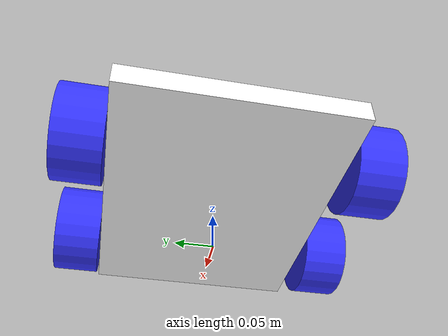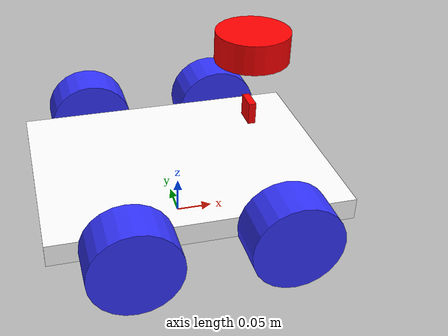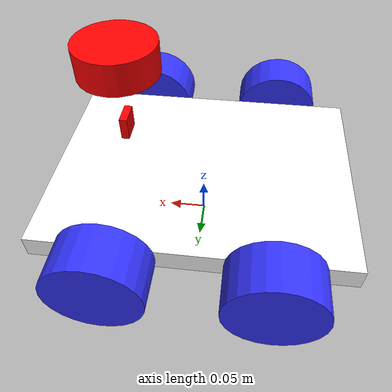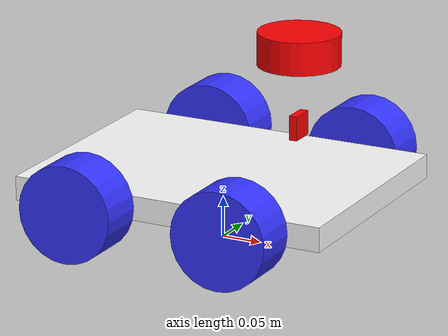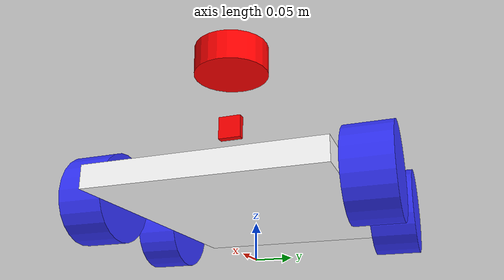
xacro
<?xml version="1.0"?>
<robot xmlns:xacro="http://www.ros.org/wiki/xacro" name="tracker_master_bot">

  <!-- Include the parameter file -->
  <xacro:include filename="$(find track_master)/urdf/robot_parameters.xacro" />

  <!-- Include the chassis -->
  <xacro:include filename="$(find track_master)/urdf/chassis.xacro" />

  <!-- Include the GNSS sensor -->
  <xacro:include filename="$(find track_master)/urdf/gnss_sensor.xacro" />

  <!-- Include the IMU sensor -->
  <xacro:include filename="$(find track_master)/urdf/imu_sensor.xacro" />

 <xacro:include filename="$(find track_master)/urdf/lidar.xacro" />

  <xacro:include filename="$(find track_master)/urdf/camera.xacro" />

  <xacro:include filename="$(find track_master)/urdf/ros2_control.xacro" />

</robot>

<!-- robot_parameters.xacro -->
<robot xmlns:xacro="http://www.ros.org/wiki/xacro">

  <!-- Parameters for the robot dimensions -->
  <xacro:property name="chassis_length" value="0.4"/>
  <xacro:property name="chassis_width" value="0.3"/>
  <xacro:property name="chassis_height" value="0.03"/>

  <!-- Parameters for rear wheel positions -->
  <xacro:property name="rear_wheel_radius" value="0.06"/>
  <xacro:property name="rear_wheel_length" value="0.06"/>
  <xacro:property name="rear_left_wheel_pos_x" value="-0.10"/>
  <xacro:property name="rear_right_wheel_pos_x" value="-0.10"/>
  <xacro:property name="rear_left_wheel_pos_y" value="0.18"/>
  <xacro:property name="rear_right_wheel_pos_y" value="-0.18"/>

  <!-- Parameters for front wheel positions -->
  <xacro:property name="front_wheel_radius" value="0.06"/>
  <xacro:property name="front_wheel_length" value="0.06"/>
  <xacro:property name="front_left_wheel_pos_x" value="0.10"/>
  <xacro:property name="front_right_wheel_pos_x" value="0.10"/>
  <xacro:property name="front_left_wheel_pos_y" value="0.18"/>
  <xacro:property name="front_right_wheel_pos_y" value="-0.18"/>

  <!-- Parameters for sensor positions -->
  <xacro:property name="gps_pos_x" value="0.05"/>
  <xacro:property name="gps_pos_y" value="0.0"/>
  <xacro:property name="gps_pos_z" value="0.0"/>

  <xacro:property name="imu_pos_x" value="0.0"/>
  <xacro:property name="imu_pos_y" value="0.0"/>
  <xacro:property name="imu_pos_z" value="0.0"/>

</robot>

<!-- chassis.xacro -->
<robot xmlns:xacro="http://www.ros.org/wiki/xacro" name="four_wheel_drive_robot">

  <!-- Include the parameters file -->
  <xacro:include filename="$(find track_master)/urdf/robot_parameters.xacro" />
  <xacro:include filename="$(find track_master)/urdf/inertial_macros.xacro"/>

  <!-- Couleurs -->
  <material name="white">
    <color rgba="1.0 1.0 1.0 1.0"/>
  </material>

  <material name="blue">
    <color rgba="0.2 0.2 1.0 1.0"/>
  </material>

  <!-- Root link (world or environment) -->
  <link name="base_footprint"/>

  <!-- Robot chassis -->
  <link name="base_link">
    <visual>
      <geometry>
        <box size="${chassis_length} ${chassis_width} ${chassis_height}"/>
      </geometry>
      <material name="white"/>
    </visual>
    <collision>
      <geometry>
        <box size="${chassis_length} ${chassis_width} ${chassis_height}"/>
      </geometry>
    </collision>
    <xacro:inertial_box mass="0.5" x="${chassis_length}" y="${chassis_width}" z="${chassis_height}">
            <origin xyz="${chassis_length/2} 0 ${chassis_height/2}" rpy="0 0 0"/>
    </xacro:inertial_box>
  </link>

  <!-- Gazebo plugin for base link -->
  <gazebo reference="base_link">
    <material>Gazebo/White</material>
  </gazebo>

  <!-- Joint to connect base_link to world_link (fixed joint) -->
  <joint name="base_joint" type="fixed">
    <parent link="base_footprint"/>
    <child link="base_link"/>
    <origin xyz="0 0 0.075" rpy="0 0 0"/>
  </joint>

  <!-- Rear left wheel -->
  <link name="rear_left_wheel">
    <visual>
      <geometry>
        <cylinder radius="${rear_wheel_radius}" length="${rear_wheel_length}"/>
      </geometry>
      <material name="blue"/>
    </visual>
    <collision>
      <geometry>
        <cylinder radius="${rear_wheel_radius}" length="${rear_wheel_length}"/>
      </geometry>
    </collision>
    <xacro:inertial_cylinder mass="0.3" length="${rear_wheel_length}" radius="${rear_wheel_radius}">
            <origin xyz="0 0 0" rpy="0 0 0"/>
    </xacro:inertial_cylinder>
  </link>

  <gazebo reference="rear_left_wheel">
    <material>Gazebo/Blue</material>
    <mu1>0.9</mu1>
    <mu2>0.9</mu2>
    <kp>1000000.0</kp>
    <kd>1.0</kd>
  </gazebo>

  <!-- Rear right wheel -->
  <link name="rear_right_wheel">
    <visual>
      <geometry>
        <cylinder radius="${rear_wheel_radius}" length="${rear_wheel_length}"/>
      </geometry>
      <material name="blue"/>
    </visual>
    <collision>
      <geometry>
        <cylinder radius="${rear_wheel_radius}" length="${rear_wheel_length}"/>
      </geometry>
    </collision>
    <xacro:inertial_cylinder mass="0.3" length="${rear_wheel_length}" radius="${rear_wheel_radius}">
            <origin xyz="0 0 0" rpy="0 0 0"/>
    </xacro:inertial_cylinder>
  </link>

  <gazebo reference="rear_right_wheel">
    <material>Gazebo/Blue</material>
    <mu1>0.9</mu1>
    <mu2>0.9</mu2>
    <kp>1000000.0</kp>
    <kd>1.0</kd>
  </gazebo>

  <!-- Front left wheel -->
  <link name="front_left_wheel">
    <visual>
      <geometry>
        <cylinder radius="${front_wheel_radius}" length="${front_wheel_length}"/>
      </geometry>
      <material name="blue"/>
    </visual>
    <collision>
      <geometry>
        <cylinder radius="${front_wheel_radius}" length="${front_wheel_length}"/>
      </geometry>
    </collision>
    <xacro:inertial_cylinder mass="0.3" length="${front_wheel_length}" radius="${front_wheel_radius}">
            <origin xyz="0 0 0" rpy="0 0 0"/>
    </xacro:inertial_cylinder>
  </link>

  <gazebo reference="front_left_wheel">
    <material>Gazebo/Blue</material>
    <mu1>0.9</mu1>
    <mu2>0.9</mu2>
    <kp>1000000.0</kp>
    <kd>1.0</kd>
  </gazebo>

  <!-- Front right wheel -->
  <link name="front_right_wheel">
    <visual>
      <geometry>
        <cylinder radius="${front_wheel_radius}" length="${front_wheel_length}"/>
      </geometry>
      <material name="blue"/>
    </visual>
    <collision>
      <geometry>
        <cylinder radius="${front_wheel_radius}" length="${front_wheel_length}"/>
      </geometry>
    </collision>
    <xacro:inertial_cylinder mass="0.3" length="${front_wheel_length}" radius="${front_wheel_radius}">
            <origin xyz="0 0 0" rpy="0 0 0"/>
    </xacro:inertial_cylinder>
  </link>

  <gazebo reference="front_right_wheel">
    <material>Gazebo/Blue</material>
    <mu1>0.9</mu1>
    <mu2>0.9</mu2>
    <kp>1000000.0</kp>
    <kd>1.0</kd>
  </gazebo>

  <!-- Joints for each wheel -->
  <joint name="rear_left_wheel_joint" type="continuous">
    <parent link="base_link"/>
    <child link="rear_left_wheel"/>
    <origin xyz="${rear_left_wheel_pos_x} ${rear_left_wheel_pos_y} 0" rpy="-${pi/2}  0 0"/>
    <axis xyz="0 0 1"/>
    <limit effort="10.0" velocity="9.0"/>
    <dynamics damping="0.01" friction="0.05"/>
  </joint>

  <joint name="rear_right_wheel_joint" type="continuous">
    <parent link="base_link"/>
    <child link="rear_right_wheel"/>
    <origin xyz="${rear_right_wheel_pos_x} ${rear_right_wheel_pos_y} 0" rpy="-${pi/2}   0 0"/>
    <axis xyz="0 0 1"/>
    <limit effort="10.0" velocity="9.0"/>
    <dynamics damping="0.01" friction="0.05"/>
  </joint>

  <joint name="front_left_wheel_joint" type="continuous">
    <parent link="base_link"/>
    <child link="front_left_wheel"/>
    <origin xyz="${front_left_wheel_pos_x} ${front_left_wheel_pos_y} 0" rpy="-${pi/2}   0 0"/>
    <axis xyz="0 0 1"/>
    <limit effort="10.0" velocity="9.0"/>
    <dynamics damping="0.01" friction="0.05"/>
  </joint>

  <joint name="front_right_wheel_joint" type="continuous">
    <parent link="base_link"/>
    <child link="front_right_wheel"/>
    <origin xyz="${front_right_wheel_pos_x} ${front_right_wheel_pos_y} 0" rpy="-${pi/2} 0 0"/>
    <axis xyz="0 0 1"/>
    <limit effort="10.0" velocity="9.0"/>
    <dynamics damping="0.01" friction="0.05"/>
  </joint>

</robot>

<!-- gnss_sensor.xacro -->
<robot xmlns:xacro="http://www.ros.org/wiki/xacro">

  <!-- Include the parameters file -->
  <xacro:include filename="$(find track_master)/urdf/robot_parameters.xacro" />

  <!-- GPS link -->
  <material name="black">
    <color rgba="0.0 0.0 0.0 1.0"/>
  </material>

  <!-- Joint between base_link and gps_link -->
  <joint name="gps_joint" type="fixed">
    <parent link="base_link"/>
    <child link="gps_link"/>
    <origin xyz="${gps_pos_x} ${gps_pos_y} ${gps_pos_z}"/>
  </joint>

  <link name="gps_link">
    <visual>
      <geometry>
        <box size="0.02 0.02 0.02"/>
      </geometry>
    </visual>
    <origin xyz="${gps_pos_x} ${gps_pos_y} ${gps_pos_z}"/>
  </link>

  <!-- GPS sensor in Gazebo -->
  <gazebo reference="gps_link">
    <material>Gazebo/Black</material>
    <sensor name="gps_sensor" type="gps">
      <!-- ensure the sensor is active (required) -->
      <always_on>true</always_on>
      <update_rate>10</update_rate>
      <gps>
        <!-- Noise configuration for position (latitude, longitude, altitude) -->
        <position_sensing>
          <noise type="gaussian">
            <mean>2.0</mean>
            <stddev>2.0</stddev> <!-- adjust to your desired noise level in meters -->
          </noise>
        </position_sensing>
        <!-- Noise configuration for velocity -->
        <velocity_sensing>
          <noise type="gaussian">
            <mean>2.0</mean>
            <stddev>1.0</stddev> <!-- adjust to your desired noise level for velocity -->
          </noise>
        </velocity_sensing>
      </gps>
      <plugin name="gps_plugin" filename="libgazebo_ros_gps_sensor.so">
        <ros>
          <!-- publish to /gps/fix -->
          <namespace>/</namespace>
          <remapping>~/out:=/gnss/fix</remapping>
          <frameName>map</frameName>
        </ros>
      </plugin>
    </sensor>
  </gazebo>

</robot>

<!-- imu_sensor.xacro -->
<robot xmlns:xacro="http://www.ros.org/wiki/xacro">

  <!-- Include the parameters file -->
  <xacro:include filename="$(find track_master)/urdf/robot_parameters.xacro" />

  <!-- IMU link -->
  <material name="vert">
    <color rgba="0.0 1.0 0.0 1.0"/>
  </material>

  <!-- Joint between base_link and imu_link -->
  <joint name="imu_joint" type="fixed">
    <parent link="base_link"/>
    <child link="imu_link"/>
    <origin xyz="${imu_pos_x} ${imu_pos_y} ${imu_pos_z}" rpy="0 0 0"/>
  </joint>

  <link name="imu_link">
    <visual>
      <geometry>
        <box size="0.03 0.01 0.005"/>
      </geometry>
    </visual>
    <origin xyz="${imu_pos_x} ${imu_pos_y} ${imu_pos_z}" rpy="0 0 0"/>
  </link>

  <!-- IMU sensor in Gazebo -->
  <gazebo reference="imu_link">
    <material>
      Gazebo/Vert
    </material>
    <gravity>false</gravity>
    <sensor name="imu_sensor" type="imu">
      <always_on>true</always_on>
      <update_rate>10</update_rate> <!-- Augmenté pour plus de précision -->
      <visualize>true</visualize>
      <topic>/imu/data</topic>

      <!-- Configuration de l'IMU avec du bruit -->
      <imu>
        <angular_velocity>
          <x>
            <noise type="gaussian">
              <mean>0.0</mean>
              <stddev>0.01</stddev>
            </noise>
          </x>
          <y>
            <noise type="gaussian">
              <mean>0.0</mean>
              <stddev>0.01</stddev>
            </noise>
          </y>
          <z>
            <noise type="gaussian">
              <mean>0.0</mean>
              <stddev>0.01</stddev>
            </noise>
          </z>
        </angular_velocity>
        <linear_acceleration>
          <x>
            <noise type="gaussian">
              <mean>0.0</mean>
              <stddev>0.02</stddev>
            </noise>
          </x>
          <y>
            <noise type="gaussian">
              <mean>0.0</mean>
              <stddev>0.02</stddev>
            </noise>
          </y>
          <z>
            <noise type="gaussian">
              <mean>0.0</mean>
              <stddev>0.02</stddev>
            </noise>
          </z>
        </linear_acceleration>
      </imu>

      <!-- Plugin IMU Gazebo -->
      <plugin filename="libgazebo_ros_imu_sensor.so" name="imu_plugin">
        <ros>
          <remapping>~/out:=/imu/data</remapping>
        </ros>
        <frame_name>imu_link</frame_name>
        <initial_orientation_as_reference>false</initial_orientation_as_reference>
      </plugin>
      <pose>0 0 0 0 0 0</pose>
    </sensor>
  </gazebo>

</robot>

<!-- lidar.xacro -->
<robot xmlns:xacro="http://www.ros.org/wiki/xacro" >

    <material name="red">
        <color rgba="1.0 0.0 0.0 1.0"/>
    </material>

    <joint name="laser_joint" type="fixed">
        <parent link="base_link"/>
        <child link="laser_link"/>
        <origin xyz="0.1 0 0.175" rpy="0 0 0"/>
    </joint>

    <link name="laser_link">
        <visual>
            <geometry>
                <cylinder radius="0.05" length="0.04"/>
            </geometry>
            <material name="red"/>
        </visual>
        <collision>
            <geometry>
                <cylinder radius="0.03" length="0.02"/>
            </geometry>
        </collision>
        <inertial>
            <mass value="1e-5" />
            <origin xyz="0 0 0" rpy="0 0 0"/>
            <inertia ixx="1e-6" ixy="0" ixz="0" iyy="1e-6" iyz="0" izz="1e-6" />
        </inertial>
    </link>

    <gazebo reference="laser_link">
        <material>Gazebo/Red</material>

        <sensor name="laser" type="ray">
            <pose> 0 0 0 0 0 0 </pose>
            <visualize>true</visualize>
            <update_rate>10</update_rate>
            <ray>
                <scan>
                    <horizontal>
                        <samples>360</samples>
                        <min_angle>-3.14</min_angle>
                        <max_angle>3.14</max_angle>
                    </horizontal>
                </scan>
                <range>
                    <min>0.05</min>
                    <max>12</max>
                </range>
            </ray>
            <plugin name="laser_controller" filename="libgazebo_ros_ray_sensor.so">
                <ros>
                    <argument>~/out:=scan</argument>
                </ros>
                <output_type>sensor_msgs/LaserScan</output_type>
                <frame_name>laser_link</frame_name>
            </plugin>
        </sensor>
    </gazebo>

</robot>

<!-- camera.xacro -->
<robot xmlns:xacro="http://www.ros.org/wiki/xacro" >

    <joint name="camera_joint" type="fixed">
        <parent link="base_link"/>
        <child link="camera_link"/>
        <origin xyz="0.1 0 0.08" rpy="0 0 0"/>
    </joint>

    <link name="camera_link">
        <visual>
            <geometry>
                <box size="0.010 0.03 0.03"/>
            </geometry>
            <material name="red"/>
        </visual>
    </link>

    <joint name="camera_optical_joint" type="fixed">
        <parent link="camera_link"/>
        <child link="camera_link_optical"/>
        <origin xyz="0 0 0" rpy="${-pi/2} 0 ${-pi/2}"/>
    </joint>

    <link name="camera_link_optical"></link>

    <gazebo reference="camera_link">
        <material>Gazebo/Red</material>

        <sensor name="camera" type="depth">
            <pose> 0 0 0 0 0 0 </pose>
            <visualize>true</visualize>
            <update_rate>10</update_rate>
            <camera>
                <horizontal_fov>1.089</horizontal_fov>
                <image>
                    <format>R8G8B8</format>
                    <width>640</width>
                    <height>480</height>
                </image>
                <clip>
                    <near>0.1</near>
                    <far>8.0</far>
                </clip>
            </camera>
            <plugin name="camera_controller" filename="libgazebo_ros_camera.so">
                <frame_name>camera_link_optical</frame_name>
            </plugin>
        </sensor>
    </gazebo>

</robot>
